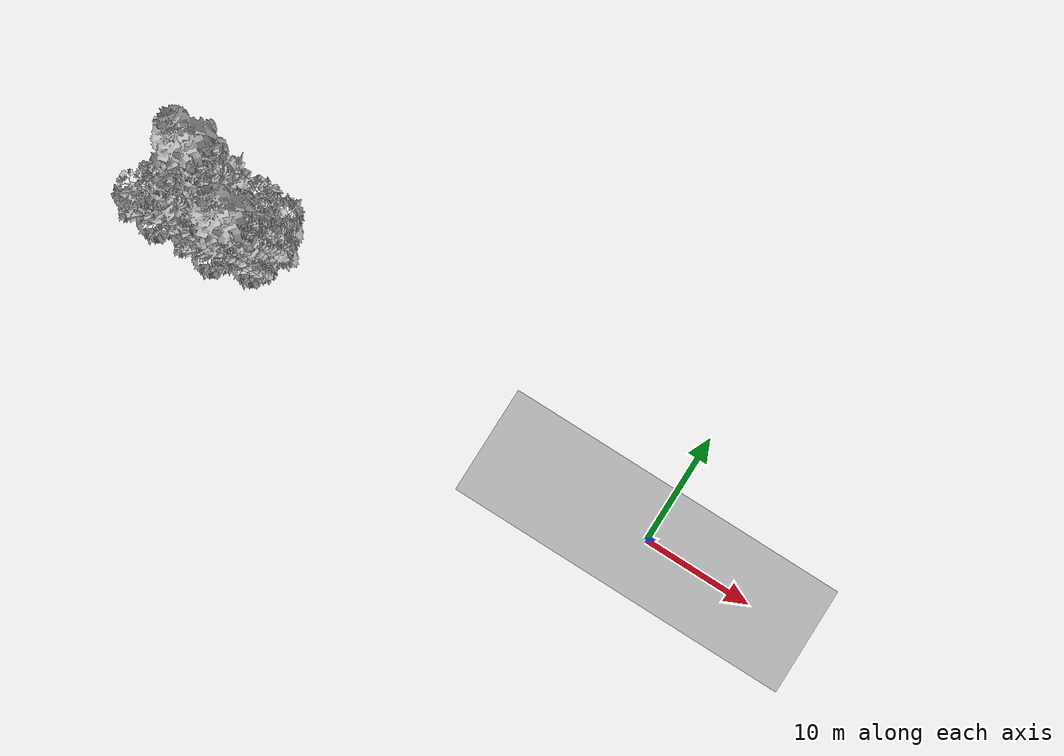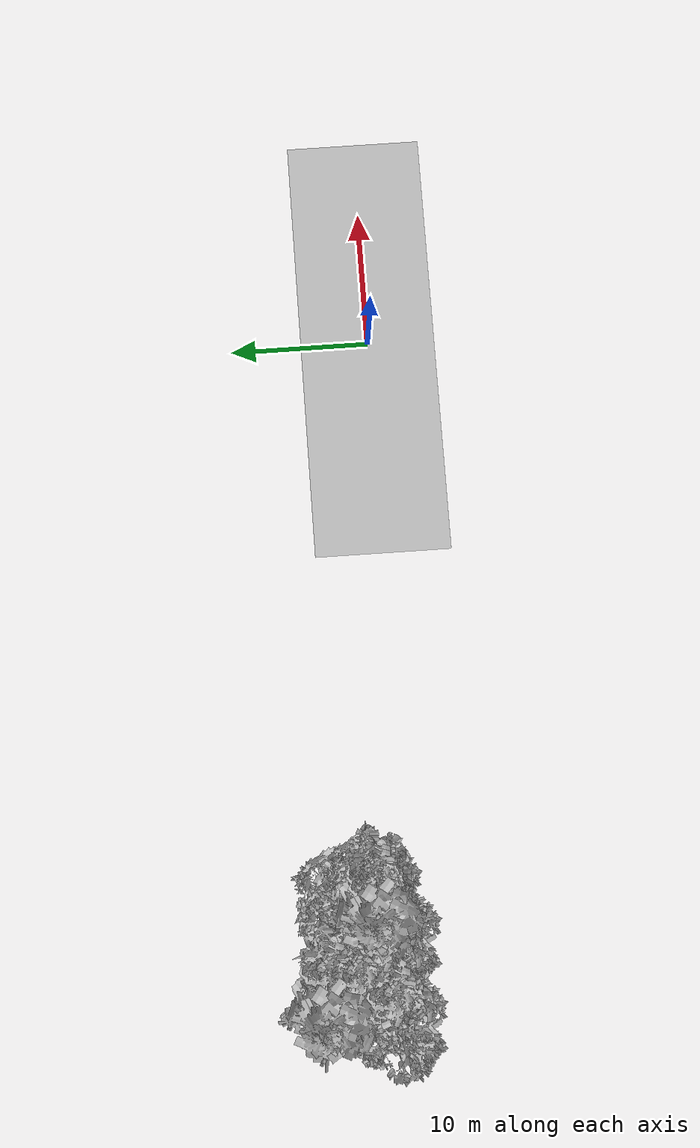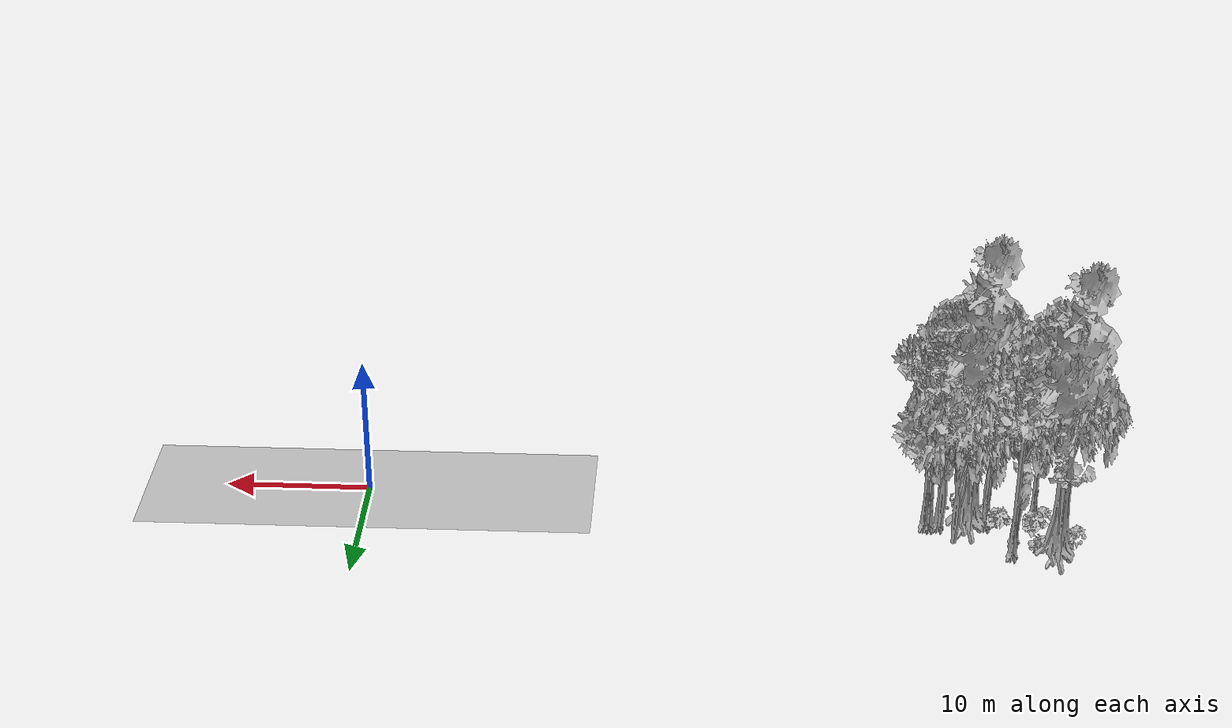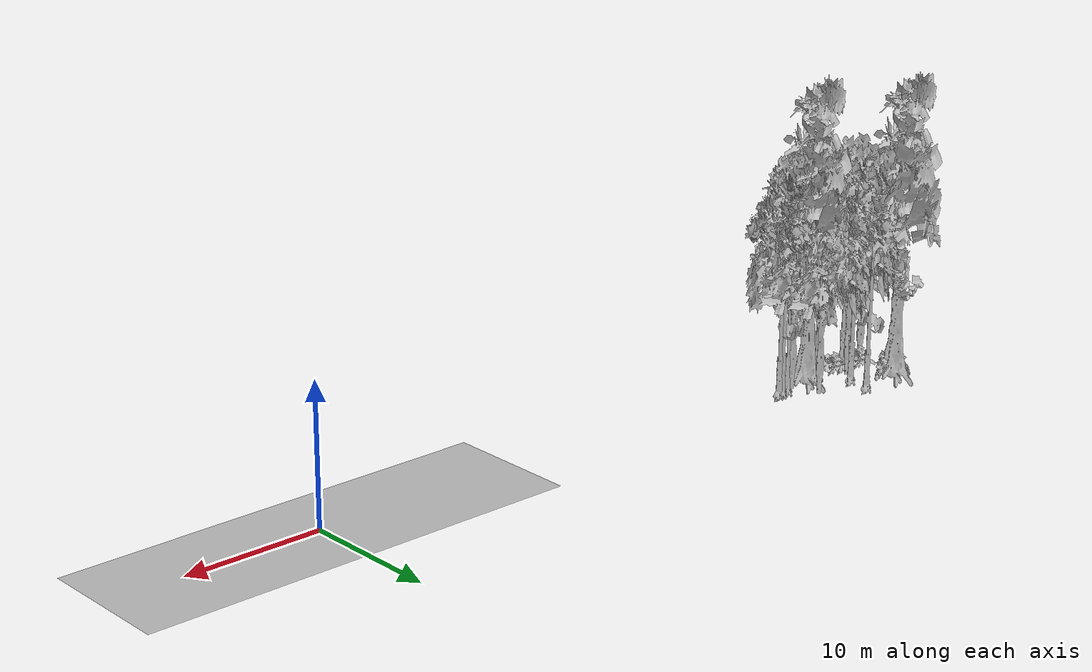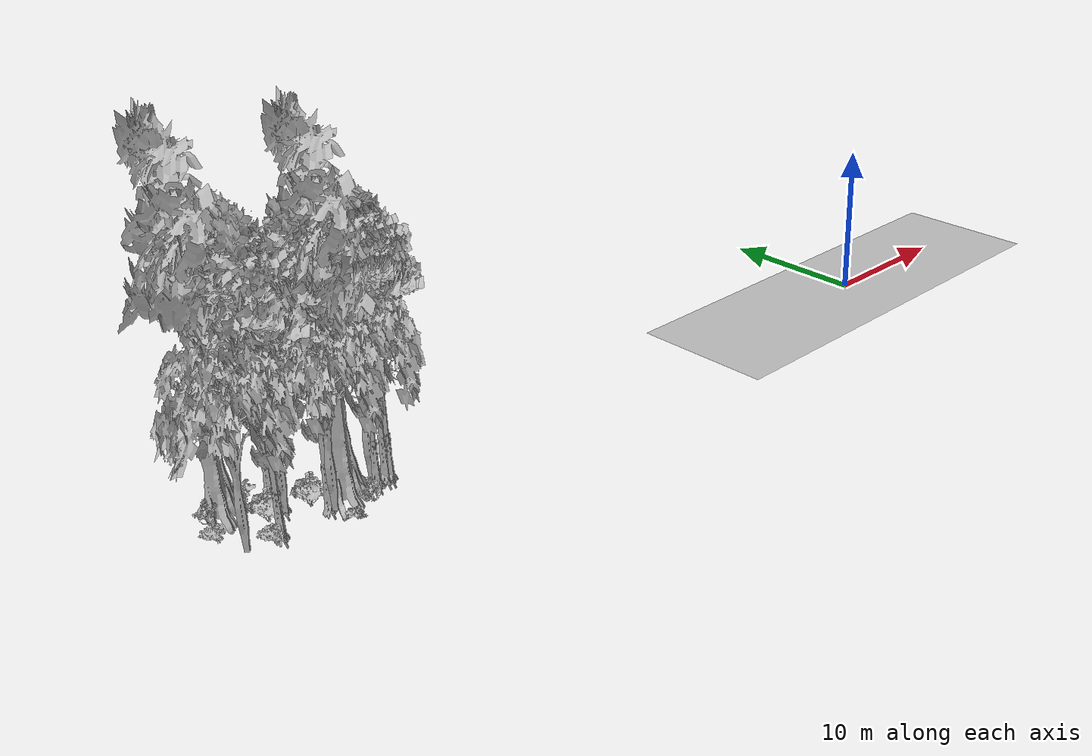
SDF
<sdf version="1.7">
 <world name="default">
  <model name="ground_plane">
   <static>1</static>
   <link name="link">
    <collision name="collision">
     <geometry><plane><normal>0 0 1</normal><size>100 100</size></plane></geometry>
     <surface><contact><ode><min_depth>0.01</min_depth><max_vel>0</max_vel></ode></contact></surface>
    </collision>
    <visual name="grass">
     <cast_shadows>0</cast_shadows>
     <geometry>
      <mesh>
       <scale>0.5814285714285714 0.18142857142857144 0.1</scale>
       <uri>file://grass_plane/meshes/grass_plane.dae</uri>
      </mesh>
     </geometry>
    </visual>
   </link>
  </model>
  <model name="Tree 4">
   <static>1</static>
   <pose>-47.181945975594665 5.9745366862424625 0 1.57079 -0 0</pose>
   <link name="link">
    <collision name="collision">
     <geometry><mesh><scale>3.5 5 3.5</scale><uri>model://tree_4/meshes/tree_4.obj</uri></mesh></geometry>
    </collision>
    <visual name="visual">
     <geometry><mesh><scale>3.5 5 3.5</scale><uri>model://tree_4/meshes/tree_4.obj</uri></mesh></geometry>
    </visual>
   </link>
  </model>
  <model name="Tree 37">
   <static>1</static>
   <pose>-44.73808775154857 3.654556515504513 0 1.57079 -0 0</pose>
   <link name="link">
    <collision name="collision">
     <geometry><mesh><scale>3.5 5 3.5</scale><uri>model://tree_2/meshes/tree_2.obj</uri></mesh></geometry>
    </collision>
    <visual name="visual">
     <geometry><mesh><scale>3.5 5 3.5</scale><uri>model://tree_2/meshes/tree_2.obj</uri></mesh></geometry>
    </visual>
   </link>
  </model>
  <model name="Tree 83">
   <static>1</static>
   <pose>-40.457637426205956 4.840942979771896 0 1.57079 -0 0</pose>
   <link name="link">
    <collision name="collision">
     <geometry><mesh><scale>3.5 5 3.5</scale><uri>model://tree_2/meshes/tree_2.obj</uri></mesh></geometry>
    </collision>
    <visual name="visual">
     <geometry><mesh><scale>3.5 5 3.5</scale><uri>model://tree_2/meshes/tree_2.obj</uri></mesh></geometry>
    </visual>
   </link>
  </model>
  <model name="Tree 184">
   <static>1</static>
   <pose>-48.10232814842567 1.9076589150839602 0 1.57079 -0 0</pose>
   <link name="link">
    <collision name="collision">
     <geometry><mesh><scale>3.5 5 3.5</scale><uri>model://tree_2/meshes/tree_2.obj</uri></mesh></geometry>
    </collision>
    <visual name="visual">
     <geometry><mesh><scale>3.5 5 3.5</scale><uri>model://tree_2/meshes/tree_2.obj</uri></mesh></geometry>
    </visual>
   </link>
  </model>
  <model name="Tree 187">
   <static>1</static>
   <pose>-44.486625742443685 4.195115853897182 0 1.57079 -0 0</pose>
   <link name="link">
    <collision name="collision">
     <geometry><mesh><scale>3.5 5 3.5</scale><uri>model://tree_9/meshes/tree_9.obj</uri></mesh></geometry>
    </collision>
    <visual name="visual">
     <geometry><mesh><scale>3.5 5 3.5</scale><uri>model://tree_9/meshes/tree_9.obj</uri></mesh></geometry>
    </visual>
   </link>
  </model>
  <model name="Tree 188">
   <static>1</static>
   <pose>-41.473358131871635 2.668083967148366 0 1.57079 -0 0</pose>
   <link name="link">
    <collision name="collision">
     <geometry><mesh><scale>3.5 5 3.5</scale><uri>model://tree_4/meshes/tree_4.obj</uri></mesh></geometry>
    </collision>
    <visual name="visual">
     <geometry><mesh><scale>3.5 5 3.5</scale><uri>model://tree_4/meshes/tree_4.obj</uri></mesh></geometry>
    </visual>
   </link>
  </model>
  <model name="Tree 206">
   <static>1</static>
   <pose>-38.81886129045047 2.7493414406523655 0 1.57079 -0 0</pose>
   <link name="link">
    <collision name="collision">
     <geometry><mesh><scale>3.5 5 3.5</scale><uri>model://tree_9/meshes/tree_9.obj</uri></mesh></geometry>
    </collision>
    <visual name="visual">
     <geometry><mesh><scale>3.5 5 3.5</scale><uri>model://tree_9/meshes/tree_9.obj</uri></mesh></geometry>
    </visual>
   </link>
  </model>
  <model name="Tree 214">
   <static>1</static>
   <pose>-38.52175462806429 2.7300049754367137 0 1.57079 -0 0</pose>
   <link name="link">
    <collision name="collision">
     <geometry><mesh><scale>3.5 5 3.5</scale><uri>model://tree_9/meshes/tree_9.obj</uri></mesh></geometry>
    </collision>
    <visual name="visual">
     <geometry><mesh><scale>3.5 5 3.5</scale><uri>model://tree_9/meshes/tree_9.obj</uri></mesh></geometry>
    </visual>
   </link>
  </model>
  <model name="Tree 261">
   <static>1</static>
   <pose>-45.94229180483463 2.0631806891503963 0 1.57079 -0 0</pose>
   <link name="link">
    <collision name="collision">
     <geometry><mesh><scale>3.5 5 3.5</scale><uri>model://tree_9/meshes/tree_9.obj</uri></mesh></geometry>
    </collision>
    <visual name="visual">
     <geometry><mesh><scale>3.5 5 3.5</scale><uri>model://tree_9/meshes/tree_9.obj</uri></mesh></geometry>
    </visual>
   </link>
  </model>
  <model name="Tree 284">
   <static>1</static>
   <pose>-44.21337424837595 5.954435247156734 0 1.57079 -0 0</pose>
   <link name="link">
    <collision name="collision">
     <geometry><mesh><scale>3.5 5 3.5</scale><uri>model://tree_9/meshes/tree_9.obj</uri></mesh></geometry>
    </collision>
    <visual name="visual">
     <geometry><mesh><scale>3.5 5 3.5</scale><uri>model://tree_9/meshes/tree_9.obj</uri></mesh></geometry>
    </visual>
   </link>
  </model>
  <model name="Tree 286">
   <static>1</static>
   <pose>-42.690843752955836 2.490331139879146 0 1.57079 -0 0</pose>
   <link name="link">
    <collision name="collision">
     <geometry><mesh><scale>3.5 5 3.5</scale><uri>model://tree_9/meshes/tree_9.obj</uri></mesh></geometry>
    </collision>
    <visual name="visual">
     <geometry><mesh><scale>3.5 5 3.5</scale><uri>model://tree_9/meshes/tree_9.obj</uri></mesh></geometry>
    </visual>
   </link>
  </model>
  <model name="Tree 323">
   <static>1</static>
   <pose>-42.79778878989517 1.8752456345520407 0 1.57079 -0 0</pose>
   <link name="link">
    <collision name="collision">
     <geometry><mesh><scale>3.5 5 3.5</scale><uri>model://tree_2/meshes/tree_2.obj</uri></mesh></geometry>
    </collision>
    <visual name="visual">
     <geometry><mesh><scale>3.5 5 3.5</scale><uri>model://tree_2/meshes/tree_2.obj</uri></mesh></geometry>
    </visual>
   </link>
  </model>
  <model name="Tree 338">
   <static>1</static>
   <pose>-39.67931801926082 2.9163848570514865 0 1.57079 -0 0</pose>
   <link name="link">
    <collision name="collision">
     <geometry><mesh><scale>3.5 5 3.5</scale><uri>model://tree_2/meshes/tree_2.obj</uri></mesh></geometry>
    </collision>
    <visual name="visual">
     <geometry><mesh><scale>3.5 5 3.5</scale><uri>model://tree_2/meshes/tree_2.obj</uri></mesh></geometry>
    </visual>
   </link>
  </model>
  <model name="Tree 351">
   <static>1</static>
   <pose>-39.45381001561718 2.681105591111983 0 1.57079 -0 0</pose>
   <link name="link">
    <collision name="collision">
     <geometry><mesh><scale>3.5 5 3.5</scale><uri>model://tree_9/meshes/tree_9.obj</uri></mesh></geometry>
    </collision>
    <visual name="visual">
     <geometry><mesh><scale>3.5 5 3.5</scale><uri>model://tree_9/meshes/tree_9.obj</uri></mesh></geometry>
    </visual>
   </link>
  </model>
  <model name="Bush 26">
   <static>1</static>
   <pose>-45.811166831383495 3.40693824316962 0 1.57079 -0 0</pose>
   <link name="link">
    <collision name="collision">
     <geometry><mesh><scale>2 2 2</scale><uri>model://bush_1/meshes/bush_1.obj</uri></mesh></geometry>
     <surface><contact><collide_without_contact>false</collide_without_contact></contact></surface>
    </collision>
    <visual name="visual">
     <geometry><mesh><scale>2 2 2</scale><uri>model://bush_1/meshes/bush_1.obj</uri></mesh></geometry>
    </visual>
   </link>
  </model>
  <model name="Bush 46">
   <static>1</static>
   <pose>-45.67396963760608 5.9192728379828665 0 1.57079 -0 0</pose>
   <link name="link">
    <collision name="collision">
     <geometry><mesh><scale>2 2 2</scale><uri>model://bush_0/meshes/bush_0.obj</uri></mesh></geometry>
     <surface><contact><collide_without_contact>false</collide_without_contact></contact></surface>
    </collision>
    <visual name="visual">
     <geometry><mesh><scale>2 2 2</scale><uri>model://bush_0/meshes/bush_0.obj</uri></mesh></geometry>
    </visual>
   </link>
  </model>
  <model name="Bush 80">
   <static>1</static>
   <pose>-46.6117491063589 1.8086726336295698 0 1.57079 -0 0</pose>
   <link name="link">
    <collision name="collision">
     <geometry><mesh><scale>2 2 2</scale><uri>model://bush_3/meshes/bush_3.obj</uri></mesh></geometry>
     <surface><contact><collide_without_contact>false</collide_without_contact></contact></surface>
    </collision>
    <visual name="visual">
     <geometry><mesh><scale>2 2 2</scale><uri>model://bush_3/meshes/bush_3.obj</uri></mesh></geometry>
    </visual>
   </link>
  </model>
  <model name="Bush 115">
   <static>1</static>
   <pose>-48.65662687772352 3.9946345189924166 0 1.57079 -0 0</pose>
   <link name="link">
    <collision name="collision">
     <geometry><mesh><scale>2 2 2</scale><uri>model://bush_3/meshes/bush_3.obj</uri></mesh></geometry>
     <surface><contact><collide_without_contact>false</collide_without_contact></contact></surface>
    </collision>
    <visual name="visual">
     <geometry><mesh><scale>2 2 2</scale><uri>model://bush_3/meshes/bush_3.obj</uri></mesh></geometry>
    </visual>
   </link>
  </model>
  <model name="Bush 135">
   <static>1</static>
   <pose>-43.42706718614351 3.0674080261207166 0 1.57079 -0 0</pose>
   <link name="link">
    <collision name="collision">
     <geometry><mesh><scale>2 2 2</scale><uri>model://bush_1/meshes/bush_1.obj</uri></mesh></geometry>
     <surface><contact><collide_without_contact>false</collide_without_contact></contact></surface>
    </collision>
    <visual name="visual">
     <geometry><mesh><scale>2 2 2</scale><uri>model://bush_1/meshes/bush_1.obj</uri></mesh></geometry>
    </visual>
   </link>
  </model>
  <model name="Bush 191">
   <static>1</static>
   <pose>-48.089637706898465 5.523161484060282 0 1.57079 -0 0</pose>
   <link name="link">
    <collision name="collision">
     <geometry><mesh><scale>2 2 2</scale><uri>model://bush_4/meshes/bush_4.obj</uri></mesh></geometry>
     <surface><contact><collide_without_contact>false</collide_without_contact></contact></surface>
    </collision>
    <visual name="visual">
     <geometry><mesh><scale>2 2 2</scale><uri>model://bush_4/meshes/bush_4.obj</uri></mesh></geometry>
    </visual>
   </link>
  </model>
  <model name="Bush 241">
   <static>1</static>
   <pose>-40.7649399175327 1.085842888216927 0 1.57079 -0 0</pose>
   <link name="link">
    <collision name="collision">
     <geometry><mesh><scale>2 2 2</scale><uri>model://bush_4/meshes/bush_4.obj</uri></mesh></geometry>
     <surface><contact><collide_without_contact>false</collide_without_contact></contact></surface>
    </collision>
    <visual name="visual">
     <geometry><mesh><scale>2 2 2</scale><uri>model://bush_4/meshes/bush_4.obj</uri></mesh></geometry>
    </visual>
   </link>
  </model>
  <model name="Bush 332">
   <static>1</static>
   <pose>-42.28671381181816 0.6370101595837205 0 1.57079 -0 0</pose>
   <link name="link">
    <collision name="collision">
     <geometry><mesh><scale>2 2 2</scale><uri>model://bush_2/meshes/bush_2.obj</uri></mesh></geometry>
     <surface><contact><collide_without_contact>false</collide_without_contact></contact></surface>
    </collision>
    <visual name="visual">
     <geometry><mesh><scale>2 2 2</scale><uri>model://bush_2/meshes/bush_2.obj</uri></mesh></geometry>
    </visual>
   </link>
  </model>
 </world>
</sdf>
